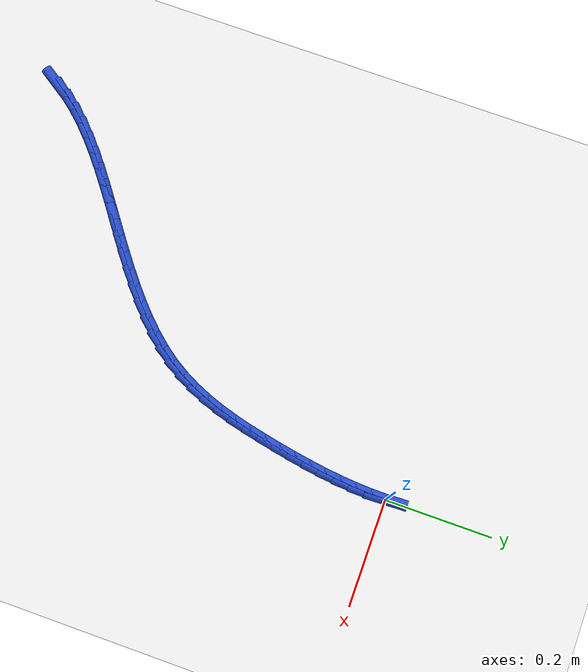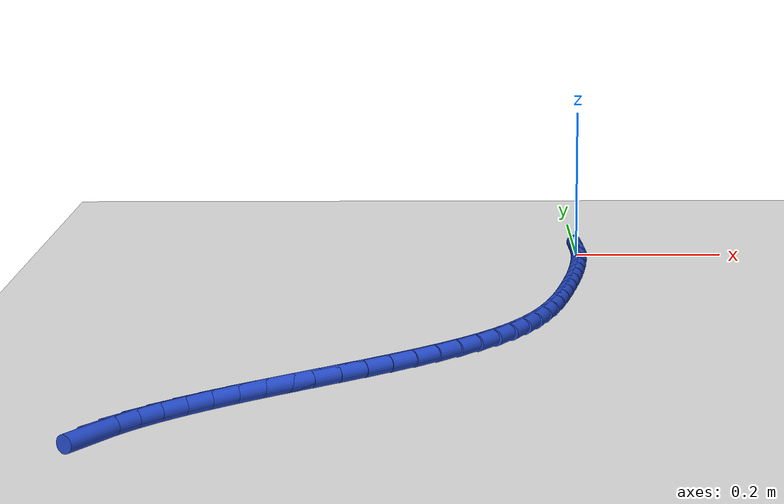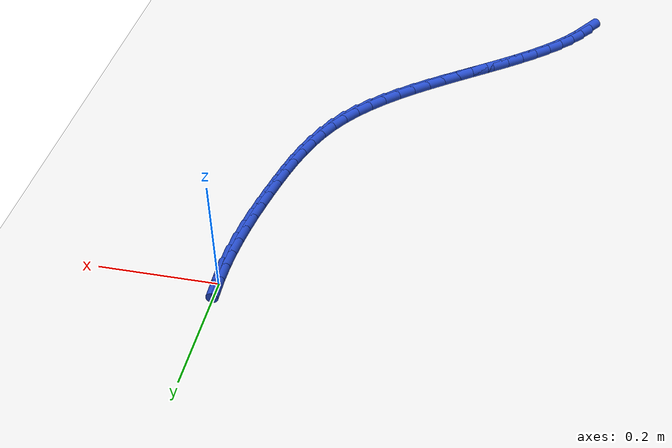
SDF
<sdf version="1.6">
 <world name="default">
  <model name="ground_plane">
   <static>1</static>
   <link name="link">
    <collision name="collision">
     <geometry><plane><normal>0 0 1</normal><size>100 100</size></plane></geometry>
     <surface><friction><ode><mu>100</mu><mu2>50</mu2></ode></friction></surface>
    </collision>
    <visual name="visual">
     <cast_shadows>0</cast_shadows>
     <geometry><plane><normal>0 0 1</normal><size>100 100</size></plane></geometry>
     <material>
      <script><uri>file://media/materials/scripts/gazebo.material</uri><name>Gazebo/WhiteGlow</name></script>
     </material>
    </visual>
   </link>
  </model>
  <model name="line">
   <link name="link_0">
    <pose>2.6020852139652106e-18 -6.938893903907228e-18 0.01 0 1.57 -1.535119810844154</pose>
    <collision name="collision">
     <geometry><cylinder><radius>0.01</radius><length>0.08</length></cylinder></geometry>
    </collision>
    <visual name="visual">
     <material>
      <script><name>Gazebo/Blue</name><uri>file://media/materials/scripts/gazebo.material</uri></script>
     </material>
     <geometry><cylinder><radius>0.01</radius><length>0.08</length></cylinder></geometry>
    </visual>
   </link>
   <link name="link_247">
    <pose>-0.5301864327383842 -0.83051437344799 0.01 0 1.57 0.9769061979816674</pose>
    <collision name="collision">
     <geometry><cylinder><radius>0.01</radius><length>0.08</length></cylinder></geometry>
    </collision>
    <visual name="visual">
     <material>
      <script><name>Gazebo/Blue</name><uri>file://media/materials/scripts/gazebo.material</uri></script>
     </material>
     <geometry><cylinder><radius>0.01</radius><length>0.08</length></cylinder></geometry>
    </visual>
   </link>
   <link name="link_248">
    <pose>-0.5142205377025725 -0.8068683587669624 0.01 0 1.57 0.8919203579892481</pose>
    <collision name="collision">
     <geometry><cylinder><radius>0.01</radius><length>0.08</length></cylinder></geometry>
    </collision>
    <visual name="visual">
     <material>
      <script><name>Gazebo/Blue</name><uri>file://media/materials/scripts/gazebo.material</uri></script>
     </material>
     <geometry><cylinder><radius>0.01</radius><length>0.08</length></cylinder></geometry>
    </visual>
   </link>
   <link name="link_249">
    <pose>-0.49586847680888074 -0.7841217423415653 0.01 0 1.57 0.8209596869292722</pose>
    <collision name="collision">
     <geometry><cylinder><radius>0.01</radius><length>0.08</length></cylinder></geometry>
    </collision>
    <visual name="visual">
     <material>
      <script><name>Gazebo/Blue</name><uri>file://media/materials/scripts/gazebo.material</uri></script>
     </material>
     <geometry><cylinder><radius>0.01</radius><length>0.08</length></cylinder></geometry>
    </visual>
   </link>
   <link name="link_250">
    <pose>-0.4754090918401487 -0.7621529089392913 0.01 0 1.57 0.7630351551460933</pose>
    <collision name="collision">
     <geometry><cylinder><radius>0.01</radius><length>0.08</length></cylinder></geometry>
    </collision>
    <visual name="visual">
     <material>
      <script><name>Gazebo/Blue</name><uri>file://media/materials/scripts/gazebo.material</uri></script>
     </material>
     <geometry><cylinder><radius>0.01</radius><length>0.08</length></cylinder></geometry>
    </visual>
   </link>
   <link name="link_251">
    <pose>-0.45312122457921616 -0.7408402433276324 0.01 0 1.57 0.7169330632317871</pose>
    <collision name="collision">
     <geometry><cylinder><radius>0.01</radius><length>0.08</length></cylinder></geometry>
    </collision>
    <visual name="visual">
     <material>
      <script><name>Gazebo/Blue</name><uri>file://media/materials/scripts/gazebo.material</uri></script>
     </material>
     <geometry><cylinder><radius>0.01</radius><length>0.08</length></cylinder></geometry>
    </visual>
   </link>
   <link name="link_252">
    <pose>-0.4292837168089224 -0.7200621302740801 0.01 0 1.57 0.6814685586616746</pose>
    <collision name="collision">
     <geometry><cylinder><radius>0.01</radius><length>0.08</length></cylinder></geometry>
    </collision>
    <visual name="visual">
     <material>
      <script><name>Gazebo/Blue</name><uri>file://media/materials/scripts/gazebo.material</uri></script>
     </material>
     <geometry><cylinder><radius>0.01</radius><length>0.08</length></cylinder></geometry>
    </visual>
   </link>
   <link name="link_253">
    <pose>-0.40417541031210824 -0.6996969545461269 0.01 0 1.57 0.6556168598590619</pose>
    <collision name="collision">
     <geometry><cylinder><radius>0.01</radius><length>0.08</length></cylinder></geometry>
    </collision>
    <visual name="visual">
     <material>
      <script><name>Gazebo/Blue</name><uri>file://media/materials/scripts/gazebo.material</uri></script>
     </material>
     <geometry><cylinder><radius>0.01</radius><length>0.08</length></cylinder></geometry>
    </visual>
   </link>
   <link name="link_254">
    <pose>-0.3780751468716134 -0.6796231009112652 0.01 0 1.57 0.638568713864937</pose>
    <collision name="collision">
     <geometry><cylinder><radius>0.01</radius><length>0.08</length></cylinder></geometry>
    </collision>
    <visual name="visual">
     <material>
      <script><name>Gazebo/Blue</name><uri>file://media/materials/scripts/gazebo.material</uri></script>
     </material>
     <geometry><cylinder><radius>0.01</radius><length>0.08</length></cylinder></geometry>
    </visual>
   </link>
   <link name="link_255">
    <pose>-0.35126176827027744 -0.6597189541369863 0.01 0 1.57 0.6297457339629461</pose>
    <collision name="collision">
     <geometry><cylinder><radius>0.01</radius><length>0.08</length></cylinder></geometry>
    </collision>
    <visual name="visual">
     <material>
      <script><name>Gazebo/Blue</name><uri>file://media/materials/scripts/gazebo.material</uri></script>
     </material>
     <geometry><cylinder><radius>0.01</radius><length>0.08</length></cylinder></geometry>
    </visual>
   </link>
   <link name="link_256">
    <pose>-0.3240141162909402 -0.6398628989907826 0.01 0 1.57 0.6287978002049698</pose>
    <collision name="collision">
     <geometry><cylinder><radius>0.01</radius><length>0.08</length></cylinder></geometry>
    </collision>
    <visual name="visual">
     <material>
      <script><name>Gazebo/Blue</name><uri>file://media/materials/scripts/gazebo.material</uri></script>
     </material>
     <geometry><cylinder><radius>0.01</radius><length>0.08</length></cylinder></geometry>
    </visual>
   </link>
   <link name="link_257">
    <pose>-0.29661103271644146 -0.6199333202401458 0.01 0 1.57 0.635594451299378</pose>
    <collision name="collision">
     <geometry><cylinder><radius>0.01</radius><length>0.08</length></cylinder></geometry>
    </collision>
    <visual name="visual">
     <material>
      <script><name>Gazebo/Blue</name><uri>file://media/materials/scripts/gazebo.material</uri></script>
     </material>
     <geometry><cylinder><radius>0.01</radius><length>0.08</length></cylinder></geometry>
    </visual>
   </link>
   <link name="link_258">
    <pose>-0.2693313593296212 -0.599808602652568 0.01 0 1.57 0.6502154238489823</pose>
    <collision name="collision">
     <geometry><cylinder><radius>0.01</radius><length>0.08</length></cylinder></geometry>
    </collision>
    <visual name="visual">
     <material>
      <script><name>Gazebo/Blue</name><uri>file://media/materials/scripts/gazebo.material</uri></script>
     </material>
     <geometry><cylinder><radius>0.01</radius><length>0.08</length></cylinder></geometry>
    </visual>
   </link>
   <link name="link_259">
    <pose>-0.24245393791331912 -0.5793671309955414 0.01 0 1.57 0.672940925272652</pose>
    <collision name="collision">
     <geometry><cylinder><radius>0.01</radius><length>0.08</length></cylinder></geometry>
    </collision>
    <visual name="visual">
     <material>
      <script><name>Gazebo/Blue</name><uri>file://media/materials/scripts/gazebo.material</uri></script>
     </material>
     <geometry><cylinder><radius>0.01</radius><length>0.08</length></cylinder></geometry>
    </visual>
   </link>
   <link name="link_260">
    <pose>-0.21625761025037518 -0.558487290036558 0.01 0 1.57 0.7042384786063902</pose>
    <collision name="collision">
     <geometry><cylinder><radius>0.01</radius><length>0.08</length></cylinder></geometry>
    </collision>
    <visual name="visual">
     <material>
      <script><name>Gazebo/Blue</name><uri>file://media/materials/scripts/gazebo.material</uri></script>
     </material>
     <geometry><cylinder><radius>0.01</radius><length>0.08</length></cylinder></geometry>
    </visual>
   </link>
   <link name="link_261">
    <pose>-0.1910212181236284 -0.5370474645431089 0.01 0 1.57 0.7447391307730038</pose>
    <collision name="collision">
     <geometry><cylinder><radius>0.01</radius><length>0.08</length></cylinder></geometry>
    </collision>
    <visual name="visual">
     <material>
      <script><name>Gazebo/Blue</name><uri>file://media/materials/scripts/gazebo.material</uri></script>
     </material>
     <geometry><cylinder><radius>0.01</radius><length>0.08</length></cylinder></geometry>
    </visual>
   </link>
   <link name="link_262">
    <pose>-0.1670236033159202 -0.5149260392826875 0.01 0 1.57 0.7951907832786667</pose>
    <collision name="collision">
     <geometry><cylinder><radius>0.01</radius><length>0.08</length></cylinder></geometry>
    </collision>
    <visual name="visual">
     <material>
      <script><name>Gazebo/Blue</name><uri>file://media/materials/scripts/gazebo.material</uri></script>
     </material>
     <geometry><cylinder><radius>0.01</radius><length>0.08</length></cylinder></geometry>
    </visual>
   </link>
   <link name="link_263">
    <pose>-0.1445436076100895 -0.4920013990227854 0.01 0 1.57 0.8563706512731599</pose>
    <collision name="collision">
     <geometry><cylinder><radius>0.01</radius><length>0.08</length></cylinder></geometry>
    </collision>
    <visual name="visual">
     <material>
      <script><name>Gazebo/Blue</name><uri>file://media/materials/scripts/gazebo.material</uri></script>
     </material>
     <geometry><cylinder><radius>0.01</radius><length>0.08</length></cylinder></geometry>
    </visual>
   </link>
   <link name="link_264">
    <pose>-0.12386007278897634 -0.4681519285308944 0.01 0 1.57 0.9289348918654105</pose>
    <collision name="collision">
     <geometry><cylinder><radius>0.01</radius><length>0.08</length></cylinder></geometry>
    </collision>
    <visual name="visual">
     <material>
      <script><name>Gazebo/Blue</name><uri>file://media/materials/scripts/gazebo.material</uri></script>
     </material>
     <geometry><cylinder><radius>0.01</radius><length>0.08</length></cylinder></geometry>
    </visual>
   </link>
   <link name="link_265">
    <pose>-0.10525184063542042 -0.4432560125745064 0.01 0 1.57 1.012321695115296</pose>
    <collision name="collision">
     <geometry><cylinder><radius>0.01</radius><length>0.08</length></cylinder></geometry>
    </collision>
    <visual name="visual">
     <material>
      <script><name>Gazebo/Blue</name><uri>file://media/materials/scripts/gazebo.material</uri></script>
     </material>
     <geometry><cylinder><radius>0.01</radius><length>0.08</length></cylinder></geometry>
    </visual>
   </link>
   <link name="link_266">
    <pose>-0.08897393506715125 -0.41720413688702834 0.01 0 1.57 1.0947288730658784</pose>
    <collision name="collision">
     <geometry><cylinder><radius>0.01</radius><length>0.08</length></cylinder></geometry>
    </collision>
    <visual name="visual">
     <material>
      <script><name>Gazebo/Blue</name><uri>file://media/materials/scripts/gazebo.material</uri></script>
     </material>
     <geometry><cylinder><radius>0.01</radius><length>0.08</length></cylinder></geometry>
    </visual>
   </link>
   <link name="link_267">
    <pose>-0.07497005015899368 -0.39004496224399327 0.01 0 1.57 1.1671396942311965</pose>
    <collision name="collision">
     <geometry><cylinder><radius>0.01</radius><length>0.08</length></cylinder></geometry>
    </collision>
    <visual name="visual">
     <material>
      <script><name>Gazebo/Blue</name><uri>file://media/materials/scripts/gazebo.material</uri></script>
     </material>
     <geometry><cylinder><radius>0.01</radius><length>0.08</length></cylinder></geometry>
    </visual>
   </link>
   <link name="link_268">
    <pose>-0.06296535467784187 -0.3619381739519122 0.01 0 1.57 1.2288120844436827</pose>
    <collision name="collision">
     <geometry><cylinder><radius>0.01</radius><length>0.08</length></cylinder></geometry>
    </collision>
    <visual name="visual">
     <material>
      <script><name>Gazebo/Blue</name><uri>file://media/materials/scripts/gazebo.material</uri></script>
     </material>
     <geometry><cylinder><radius>0.01</radius><length>0.08</length></cylinder></geometry>
    </visual>
   </link>
   <link name="link_269">
    <pose>-0.052680492460992996 -0.33304575626468513 0.01 0 1.57 1.2796638697291336</pose>
    <collision name="collision">
     <geometry><cylinder><radius>0.01</radius><length>0.08</length></cylinder></geometry>
    </collision>
    <visual name="visual">
     <material>
      <script><name>Gazebo/Blue</name><uri>file://media/materials/scripts/gazebo.material</uri></script>
     </material>
     <geometry><cylinder><radius>0.01</radius><length>0.08</length></cylinder></geometry>
    </visual>
   </link>
   <link name="link_270">
    <pose>-0.043836107345743947 -0.3035296934362112 0.01 0 1.57 1.3198979242996465</pose>
    <collision name="collision">
     <geometry><cylinder><radius>0.01</radius><length>0.08</length></cylinder></geometry>
    </collision>
    <visual name="visual">
     <material>
      <script><name>Gazebo/Blue</name><uri>file://media/materials/scripts/gazebo.material</uri></script>
     </material>
     <geometry><cylinder><radius>0.01</radius><length>0.08</length></cylinder></geometry>
    </visual>
   </link>
   <link name="link_271">
    <pose>-0.03615284316939246 -0.27355196972039264 0.01 0 1.57 1.3498250612582599</pose>
    <collision name="collision">
     <geometry><cylinder><radius>0.01</radius><length>0.08</length></cylinder></geometry>
    </collision>
    <visual name="visual">
     <material>
      <script><name>Gazebo/Blue</name><uri>file://media/materials/scripts/gazebo.material</uri></script>
     </material>
     <geometry><cylinder><radius>0.01</radius><length>0.08</length></cylinder></geometry>
    </visual>
   </link>
   <link name="link_272">
    <pose>-0.029351343769235382 -0.2432745693711285 0.01 0 1.57 1.3698082818518387</pose>
    <collision name="collision">
     <geometry><cylinder><radius>0.01</radius><length>0.08</length></cylinder></geometry>
    </collision>
    <visual name="visual">
     <material>
      <script><name>Gazebo/Blue</name><uri>file://media/materials/scripts/gazebo.material</uri></script>
     </material>
     <geometry><cylinder><radius>0.01</radius><length>0.08</length></cylinder></geometry>
    </visual>
   </link>
   <link name="link_273">
    <pose>-0.023154445132724532 -0.21285868397509813 0.01 0 1.57 1.3850412542229589</pose>
    <collision name="collision">
     <geometry><cylinder><radius>0.01</radius><length>0.08</length></cylinder></geometry>
    </collision>
    <visual name="visual">
     <material>
      <script><name>Gazebo/Blue</name><uri>file://media/materials/scripts/gazebo.material</uri></script>
     </material>
     <geometry><cylinder><radius>0.01</radius><length>0.08</length></cylinder></geometry>
    </visual>
   </link>
   <link name="link_274">
    <pose>-0.017432865576161107 -0.18241203183186247 0.01 0 1.57 1.4037199018522462</pose>
    <collision name="collision">
     <geometry><cylinder><radius>0.01</radius><length>0.08</length></cylinder></geometry>
    </collision>
    <visual name="visual">
     <material>
      <script><name>Gazebo/Blue</name><uri>file://media/materials/scripts/gazebo.material</uri></script>
     </material>
     <geometry><cylinder><radius>0.01</radius><length>0.08</length></cylinder></geometry>
    </visual>
   </link>
   <link name="link_275">
    <pose>-0.012296474086540147 -0.15195585591578262 0.01 0 1.57 1.426672293998166</pose>
    <collision name="collision">
     <geometry><cylinder><radius>0.01</radius><length>0.08</length></cylinder></geometry>
    </collision>
    <visual name="visual">
     <material>
      <script><name>Gazebo/Blue</name><uri>file://media/materials/scripts/gazebo.material</uri></script>
     </material>
     <geometry><cylinder><radius>0.01</radius><length>0.08</length></cylinder></geometry>
    </visual>
   </link>
   <link name="link_276">
    <pose>-0.007876918159788165 -0.12150352423420954 0.01 0 1.57 1.4539964249729913</pose>
    <collision name="collision">
     <geometry><cylinder><radius>0.01</radius><length>0.08</length></cylinder></geometry>
    </collision>
    <visual name="visual">
     <material>
      <script><name>Gazebo/Blue</name><uri>file://media/materials/scripts/gazebo.material</uri></script>
     </material>
     <geometry><cylinder><radius>0.01</radius><length>0.08</length></cylinder></geometry>
    </visual>
   </link>
   <link name="link_277">
    <pose>-0.0043058452918316534 -0.09106840479449405 0.01 0 1.57 1.4857860614525993</pose>
    <collision name="collision">
     <geometry><cylinder><radius>0.01</radius><length>0.08</length></cylinder></geometry>
    </collision>
    <visual name="visual">
     <material>
      <script><name>Gazebo/Blue</name><uri>file://media/materials/scripts/gazebo.material</uri></script>
     </material>
     <geometry><cylinder><radius>0.01</radius><length>0.08</length></cylinder></geometry>
    </visual>
   </link>
   <link name="link_278">
    <pose>-0.0017149029785971178 -0.0606638656039869 0.01 0 1.57 1.5221149423668263</pose>
    <collision name="collision">
     <geometry><cylinder><radius>0.01</radius><length>0.08</length></cylinder></geometry>
    </collision>
    <visual name="visual">
     <material>
      <script><name>Gazebo/Blue</name><uri>file://media/materials/scripts/gazebo.material</uri></script>
     </material>
     <geometry><cylinder><radius>0.01</radius><length>0.08</length></cylinder></geometry>
    </visual>
   </link>
   <link name="link_279">
    <pose>-0.00023573871601103528 -0.030303274670038054 0.01 0 1.57 1.5630171688229482</pose>
    <collision name="collision">
     <geometry><cylinder><radius>0.01</radius><length>0.08</length></cylinder></geometry>
    </collision>
    <visual name="visual">
     <material>
      <script><name>Gazebo/Blue</name><uri>file://media/materials/scripts/gazebo.material</uri></script>
     </material>
     <geometry><cylinder><radius>0.01</radius><length>0.08</length></cylinder></geometry>
    </visual>
   </link>
   <link name="link_280">
    <pose>-4.336808689942018e-18 -2.3592239273284576e-16 0.01 0 1.57 -1.5331285184104477</pose>
    <collision name="collision">
     <geometry><cylinder><radius>0.01</radius><length>0.08</length></cylinder></geometry>
    </collision>
    <visual name="visual">
     <material>
      <script><name>Gazebo/Blue</name><uri>file://media/materials/scripts/gazebo.material</uri></script>
     </material>
     <geometry><cylinder><radius>0.01</radius><length>0.08</length></cylinder></geometry>
    </visual>
   </link>
  </model>
 </world>
</sdf>
